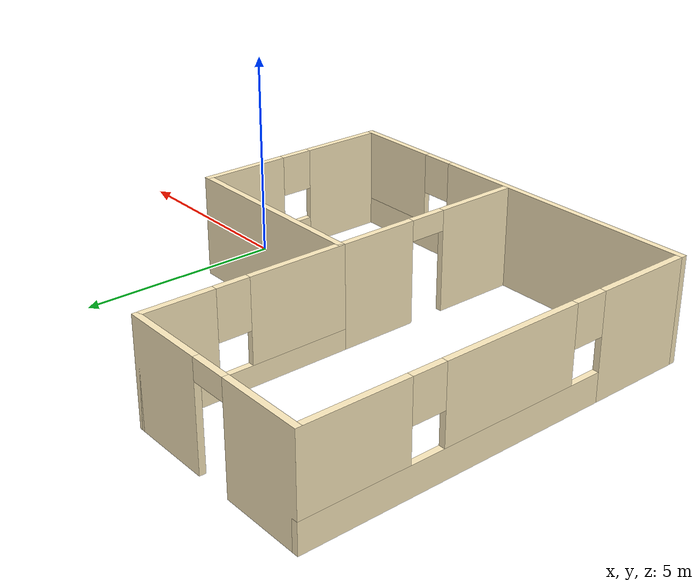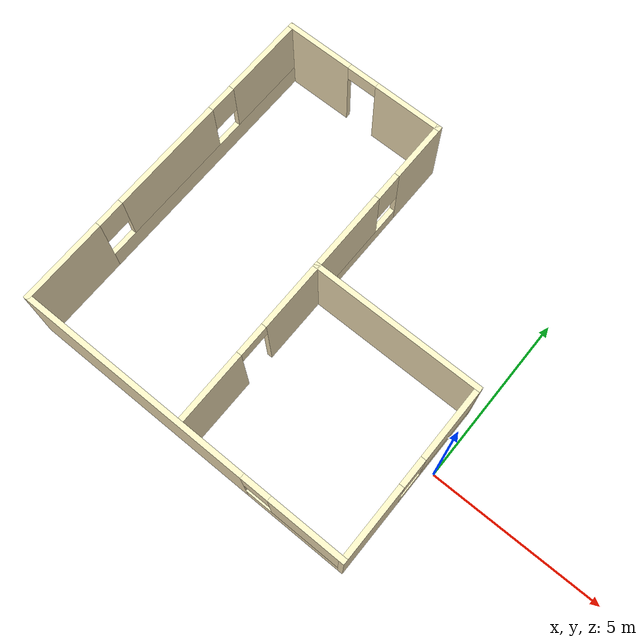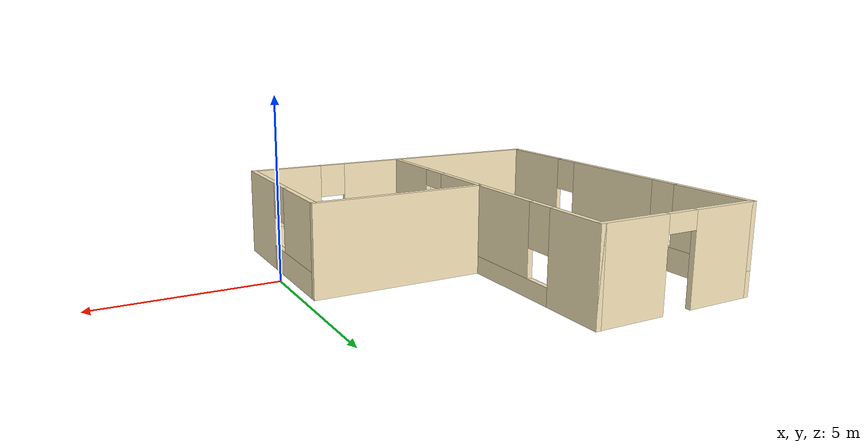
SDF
<?xml version='1.0'?>
<sdf version='1.6'>
  <model name='mybuilding'>
    <pose frame=''>-5.17902 1.68496 0 0 -0 0</pose>
    <link name='Wall_62'>
      <pose frame=''>-4.85 0 0 0 -0 1.5708</pose>
      <visual name='Wall_62_Visual_0'>
        <pose frame=''>-3.74581 0 1.25 0 -0 0</pose>
        <geometry>
          <box>
            <size>2.50837 0.15 2.5</size>
          </box>
        </geometry>
        <material>
          <script>
            <uri>file://media/materials/scripts/gazebo.material</uri>
            <name>Gazebo/Grey</name>
          </script>
          <ambient>1 0.929412 0.752941 1</ambient>
        </material>
        <meta>
          <layer>0</layer>
        </meta>
      </visual>
      <collision name='Wall_62_Collision_0'>
        <geometry>
          <box>
            <size>2.50837 0.15 2.5</size>
          </box>
        </geometry>
        <pose frame=''>-3.74581 0 1.25 0 -0 0</pose>
      </collision>
      <visual name='Wall_62_Visual_1'>
        <pose frame=''>1.25419 0 0.35 0 -0 0</pose>
        <geometry>
          <box>
            <size>7.49163 0.15 0.7</size>
          </box>
        </geometry>
        <material>
          <script>
            <uri>file://media/materials/scripts/gazebo.material</uri>
            <name>Gazebo/Grey</name>
          </script>
          <ambient>1 0.929412 0.752941 1</ambient>
        </material>
        <meta>
          <layer>0</layer>
        </meta>
      </visual>
      <collision name='Wall_62_Collision_1'>
        <geometry>
          <box>
            <size>7.49163 0.15 0.7</size>
          </box>
        </geometry>
        <pose frame=''>1.25419 0 0.35 0 -0 0</pose>
      </collision>
      <visual name='Wall_62_Visual_2'>
        <pose frame=''>-0.000724 0 1.6 0 -0 0</pose>
        <geometry>
          <box>
            <size>3.3818 0.15 1.8</size>
          </box>
        </geometry>
        <material>
          <script>
            <uri>file://media/materials/scripts/gazebo.material</uri>
            <name>Gazebo/Grey</name>
          </script>
          <ambient>1 0.929412 0.752941 1</ambient>
        </material>
        <meta>
          <layer>0</layer>
        </meta>
      </visual>
      <collision name='Wall_62_Collision_2'>
        <geometry>
          <box>
            <size>3.3818 0.15 1.8</size>
          </box>
        </geometry>
        <pose frame=''>-0.000724 0 1.6 0 -0 0</pose>
      </collision>
      <visual name='Wall_62_Visual_3'>
        <pose frame=''>3.74509 0 1.6 0 -0 0</pose>
        <geometry>
          <box>
            <size>2.50982 0.15 1.8</size>
          </box>
        </geometry>
        <material>
          <script>
            <uri>file://media/materials/scripts/gazebo.material</uri>
            <name>Gazebo/Grey</name>
          </script>
          <ambient>1 0.929412 0.752941 1</ambient>
        </material>
        <meta>
          <layer>0</layer>
        </meta>
      </visual>
      <collision name='Wall_62_Collision_3'>
        <geometry>
          <box>
            <size>2.50982 0.15 1.8</size>
          </box>
        </geometry>
        <pose frame=''>3.74509 0 1.6 0 -0 0</pose>
      </collision>
      <visual name='Wall_62_Visual_4'>
        <pose frame=''>-2.09163 0 2 0 -0 0</pose>
        <geometry>
          <box>
            <size>0.8 0.15 1</size>
          </box>
        </geometry>
        <material>
          <script>
            <uri>file://media/materials/scripts/gazebo.material</uri>
            <name>Gazebo/Grey</name>
          </script>
          <ambient>1 0.929412 0.752941 1</ambient>
        </material>
        <meta>
          <layer>0</layer>
        </meta>
      </visual>
      <collision name='Wall_62_Collision_4'>
        <geometry>
          <box>
            <size>0.8 0.15 1</size>
          </box>
        </geometry>
        <pose frame=''>-2.09163 0 2 0 -0 0</pose>
      </collision>
      <visual name='Wall_62_Visual_5'>
        <pose frame=''>2.09018 0 2 0 -0 0</pose>
        <geometry>
          <box>
            <size>0.8 0.15 1</size>
          </box>
        </geometry>
        <material>
          <script>
            <uri>file://media/materials/scripts/gazebo.material</uri>
            <name>Gazebo/Grey</name>
          </script>
          <ambient>1 0.929412 0.752941 1</ambient>
        </material>
        <meta>
          <layer>0</layer>
        </meta>
      </visual>
      <collision name='Wall_62_Collision_5'>
        <geometry>
          <box>
            <size>0.8 0.15 1</size>
          </box>
        </geometry>
        <pose frame=''>2.09018 0 2 0 -0 0</pose>
      </collision>
    </link>
    <link name='Wall_64'>
      <pose frame=''>-2.425 4.925 0 0 -0 0</pose>
      <visual name='Wall_64_Visual_0'>
        <pose frame=''>-1.47838 0 1.25 0 -0 0</pose>
        <geometry>
          <box>
            <size>2.04324 0.15 2.5</size>
          </box>
        </geometry>
        <material>
          <script>
            <uri>file://media/materials/scripts/gazebo.material</uri>
            <name>Gazebo/Grey</name>
          </script>
          <ambient>1 0.929412 0.752941 1</ambient>
        </material>
        <meta>
          <layer>0</layer>
        </meta>
      </visual>
      <collision name='Wall_64_Collision_0'>
        <geometry>
          <box>
            <size>2.04324 0.15 2.5</size>
          </box>
        </geometry>
        <pose frame=''>-1.47838 0 1.25 0 -0 0</pose>
      </collision>
      <visual name='Wall_64_Visual_1'>
        <pose frame=''>1.47162 0 1.25 0 -0 0</pose>
        <geometry>
          <box>
            <size>2.05676 0.15 2.5</size>
          </box>
        </geometry>
        <material>
          <script>
            <uri>file://media/materials/scripts/gazebo.material</uri>
            <name>Gazebo/Grey</name>
          </script>
          <ambient>1 0.929412 0.752941 1</ambient>
        </material>
        <meta>
          <layer>0</layer>
        </meta>
      </visual>
      <collision name='Wall_64_Collision_1'>
        <geometry>
          <box>
            <size>2.05676 0.15 2.5</size>
          </box>
        </geometry>
        <pose frame=''>1.47162 0 1.25 0 -0 0</pose>
      </collision>
      <visual name='Wall_64_Visual_2'>
        <pose frame=''>-0.006757 0 2.25 0 -0 0</pose>
        <geometry>
          <box>
            <size>0.9 0.15 0.5</size>
          </box>
        </geometry>
        <material>
          <script>
            <uri>file://media/materials/scripts/gazebo.material</uri>
            <name>Gazebo/Grey</name>
          </script>
          <ambient>1 0.929412 0.752941 1</ambient>
        </material>
        <meta>
          <layer>0</layer>
        </meta>
      </visual>
      <collision name='Wall_64_Collision_2'>
        <geometry>
          <box>
            <size>0.9 0.15 0.5</size>
          </box>
        </geometry>
        <pose frame=''>-0.006757 0 2.25 0 -0 0</pose>
      </collision>
    </link>
    <link name='Wall_66'>
      <pose frame=''>0 2.5 0 0 0 -1.5708</pose>
      <visual name='Wall_66_Visual_0'>
        <pose frame=''>-1.60752 0 1.25 0 -0 0</pose>
        <geometry>
          <box>
            <size>1.78496 0.15 2.5</size>
          </box>
        </geometry>
        <material>
          <script>
            <uri>file://media/materials/scripts/gazebo.material</uri>
            <name>Gazebo/Grey</name>
          </script>
          <ambient>1 0.929412 0.752941 1</ambient>
        </material>
        <meta>
          <layer>0</layer>
        </meta>
      </visual>
      <collision name='Wall_66_Collision_0'>
        <geometry>
          <box>
            <size>1.78496 0.15 2.5</size>
          </box>
        </geometry>
        <pose frame=''>-1.60752 0 1.25 0 -0 0</pose>
      </collision>
      <visual name='Wall_66_Visual_1'>
        <pose frame=''>0.892479 0 0.25 0 -0 0</pose>
        <geometry>
          <box>
            <size>3.21504 0.15 0.5</size>
          </box>
        </geometry>
        <material>
          <script>
            <uri>file://media/materials/scripts/gazebo.material</uri>
            <name>Gazebo/Grey</name>
          </script>
          <ambient>1 0.929412 0.752941 1</ambient>
        </material>
        <meta>
          <layer>0</layer>
        </meta>
      </visual>
      <collision name='Wall_66_Collision_1'>
        <geometry>
          <box>
            <size>3.21504 0.15 0.5</size>
          </box>
        </geometry>
        <pose frame=''>0.892479 0 0.25 0 -0 0</pose>
      </collision>
      <visual name='Wall_66_Visual_2'>
        <pose frame=''>1.29248 0 1.5 0 -0 0</pose>
        <geometry>
          <box>
            <size>2.41504 0.15 2</size>
          </box>
        </geometry>
        <material>
          <script>
            <uri>file://media/materials/scripts/gazebo.material</uri>
            <name>Gazebo/Grey</name>
          </script>
          <ambient>1 0.929412 0.752941 1</ambient>
        </material>
        <meta>
          <layer>0</layer>
        </meta>
      </visual>
      <collision name='Wall_66_Collision_2'>
        <geometry>
          <box>
            <size>2.41504 0.15 2</size>
          </box>
        </geometry>
        <pose frame=''>1.29248 0 1.5 0 -0 0</pose>
      </collision>
      <visual name='Wall_66_Visual_3'>
        <pose frame=''>-0.315041 0 1.9 0 -0 0</pose>
        <geometry>
          <box>
            <size>0.8 0.15 1.2</size>
          </box>
        </geometry>
        <material>
          <script>
            <uri>file://media/materials/scripts/gazebo.material</uri>
            <name>Gazebo/Grey</name>
          </script>
          <ambient>1 0.929412 0.752941 1</ambient>
        </material>
        <meta>
          <layer>0</layer>
        </meta>
      </visual>
      <collision name='Wall_66_Collision_3'>
        <geometry>
          <box>
            <size>0.8 0.15 1.2</size>
          </box>
        </geometry>
        <pose frame=''>-0.315041 0 1.9 0 -0 0</pose>
      </collision>
    </link>
    <link name='Wall_71'>
      <collision name='Wall_71_Collision'>
        <geometry>
          <box>
            <size>5 0.15 2.5</size>
          </box>
        </geometry>
        <pose frame=''>0 0 1.25 0 -0 0</pose>
      </collision>
      <visual name='Wall_71_Visual'>
        <pose frame=''>0 0 1.25 0 -0 0</pose>
        <geometry>
          <box>
            <size>5 0.15 2.5</size>
          </box>
        </geometry>
        <material>
          <script>
            <uri>file://media/materials/scripts/gazebo.material</uri>
            <name>Gazebo/Grey</name>
          </script>
          <ambient>1 0.929412 0.752941 1</ambient>
        </material>
        <meta>
          <layer>0</layer>
        </meta>
      </visual>
      <pose frame=''>2.425 0.075 0 0 -0 0</pose>
    </link>
    <link name='Wall_74'>
      <pose frame=''>4.85 -2.425 0 0 -0 1.5708</pose>
      <visual name='Wall_74_Visual_0'>
        <pose frame=''>-1.49177 0 1.25 0 -0 0</pose>
        <geometry>
          <box>
            <size>2.16647 0.15 2.5</size>
          </box>
        </geometry>
        <material>
          <script>
            <uri>file://media/materials/scripts/gazebo.material</uri>
            <name>Gazebo/Grey</name>
          </script>
          <ambient>1 0.929412 0.752941 1</ambient>
        </material>
        <meta>
          <layer>0</layer>
        </meta>
      </visual>
      <collision name='Wall_74_Collision_0'>
        <geometry>
          <box>
            <size>2.16647 0.15 2.5</size>
          </box>
        </geometry>
        <pose frame=''>-1.49177 0 1.25 0 -0 0</pose>
      </collision>
      <visual name='Wall_74_Visual_1'>
        <pose frame=''>1.08323 0 0.35 0 -0 0</pose>
        <geometry>
          <box>
            <size>2.98353 0.15 0.7</size>
          </box>
        </geometry>
        <material>
          <script>
            <uri>file://media/materials/scripts/gazebo.material</uri>
            <name>Gazebo/Grey</name>
          </script>
          <ambient>1 0.929412 0.752941 1</ambient>
        </material>
        <meta>
          <layer>0</layer>
        </meta>
      </visual>
      <collision name='Wall_74_Collision_1'>
        <geometry>
          <box>
            <size>2.98353 0.15 0.7</size>
          </box>
        </geometry>
        <pose frame=''>1.08323 0 0.35 0 -0 0</pose>
      </collision>
      <visual name='Wall_74_Visual_2'>
        <pose frame=''>1.48323 0 1.6 0 -0 0</pose>
        <geometry>
          <box>
            <size>2.18353 0.15 1.8</size>
          </box>
        </geometry>
        <material>
          <script>
            <uri>file://media/materials/scripts/gazebo.material</uri>
            <name>Gazebo/Grey</name>
          </script>
          <ambient>1 0.929412 0.752941 1</ambient>
        </material>
        <meta>
          <layer>0</layer>
        </meta>
      </visual>
      <collision name='Wall_74_Collision_2'>
        <geometry>
          <box>
            <size>2.18353 0.15 1.8</size>
          </box>
        </geometry>
        <pose frame=''>1.48323 0 1.6 0 -0 0</pose>
      </collision>
      <visual name='Wall_74_Visual_3'>
        <pose frame=''>-0.008534 0 2 0 -0 0</pose>
        <geometry>
          <box>
            <size>0.8 0.15 1</size>
          </box>
        </geometry>
        <material>
          <script>
            <uri>file://media/materials/scripts/gazebo.material</uri>
            <name>Gazebo/Grey</name>
          </script>
          <ambient>1 0.929412 0.752941 1</ambient>
        </material>
        <meta>
          <layer>0</layer>
        </meta>
      </visual>
      <collision name='Wall_74_Collision_3'>
        <geometry>
          <box>
            <size>0.8 0.15 1</size>
          </box>
        </geometry>
        <pose frame=''>-0.008534 0 2 0 -0 0</pose>
      </collision>
    </link>
    <link name='Wall_76'>
      <pose frame=''>0 -4.925 0 0 -0 0</pose>
      <visual name='Wall_76_Visual_0'>
        <pose frame=''>-1.49862 0 1.25 0 -0 0</pose>
        <geometry>
          <box>
            <size>6.85275 0.15 2.5</size>
          </box>
        </geometry>
        <material>
          <script>
            <uri>file://media/materials/scripts/gazebo.material</uri>
            <name>Gazebo/Grey</name>
          </script>
          <ambient>1 0.929412 0.752941 1</ambient>
        </material>
        <meta>
          <layer>0</layer>
        </meta>
      </visual>
      <collision name='Wall_76_Collision_0'>
        <geometry>
          <box>
            <size>6.85275 0.15 2.5</size>
          </box>
        </geometry>
        <pose frame=''>-1.49862 0 1.25 0 -0 0</pose>
      </collision>
      <visual name='Wall_76_Visual_1'>
        <pose frame=''>3.42638 0 0.35 0 -0 0</pose>
        <geometry>
          <box>
            <size>2.99725 0.15 0.7</size>
          </box>
        </geometry>
        <material>
          <script>
            <uri>file://media/materials/scripts/gazebo.material</uri>
            <name>Gazebo/Grey</name>
          </script>
          <ambient>1 0.929412 0.752941 1</ambient>
        </material>
        <meta>
          <layer>0</layer>
        </meta>
      </visual>
      <collision name='Wall_76_Collision_1'>
        <geometry>
          <box>
            <size>2.99725 0.15 0.7</size>
          </box>
        </geometry>
        <pose frame=''>3.42638 0 0.35 0 -0 0</pose>
      </collision>
      <visual name='Wall_76_Visual_2'>
        <pose frame=''>3.82638 0 1.6 0 -0 0</pose>
        <geometry>
          <box>
            <size>2.19725 0.15 1.8</size>
          </box>
        </geometry>
        <material>
          <script>
            <uri>file://media/materials/scripts/gazebo.material</uri>
            <name>Gazebo/Grey</name>
          </script>
          <ambient>1 0.929412 0.752941 1</ambient>
        </material>
        <meta>
          <layer>0</layer>
        </meta>
      </visual>
      <collision name='Wall_76_Collision_2'>
        <geometry>
          <box>
            <size>2.19725 0.15 1.8</size>
          </box>
        </geometry>
        <pose frame=''>3.82638 0 1.6 0 -0 0</pose>
      </collision>
      <visual name='Wall_76_Visual_3'>
        <pose frame=''>2.32775 0 2 0 -0 0</pose>
        <geometry>
          <box>
            <size>0.8 0.15 1</size>
          </box>
        </geometry>
        <material>
          <script>
            <uri>file://media/materials/scripts/gazebo.material</uri>
            <name>Gazebo/Grey</name>
          </script>
          <ambient>1 0.929412 0.752941 1</ambient>
        </material>
        <meta>
          <layer>0</layer>
        </meta>
      </visual>
      <collision name='Wall_76_Collision_3'>
        <geometry>
          <box>
            <size>0.8 0.15 1</size>
          </box>
        </geometry>
        <pose frame=''>2.32775 0 2 0 -0 0</pose>
      </collision>
    </link>
    <link name='Wall_78'>
      <pose frame=''>0 -2.35 0 0 0 -1.5708</pose>
      <visual name='Wall_78_Visual_0'>
        <pose frame=''>-1.47268 0 1.25 0 -0 0</pose>
        <geometry>
          <box>
            <size>2.05463 0.15 2.5</size>
          </box>
        </geometry>
        <material>
          <script>
            <uri>file://media/materials/scripts/gazebo.material</uri>
            <name>Gazebo/Grey</name>
          </script>
          <ambient>1 0.929412 0.752941 1</ambient>
        </material>
        <meta>
          <layer>0</layer>
        </meta>
      </visual>
      <collision name='Wall_78_Collision_0'>
        <geometry>
          <box>
            <size>2.05463 0.15 2.5</size>
          </box>
        </geometry>
        <pose frame=''>-1.47268 0 1.25 0 -0 0</pose>
      </collision>
      <visual name='Wall_78_Visual_1'>
        <pose frame=''>1.47732 0 1.25 0 -0 0</pose>
        <geometry>
          <box>
            <size>2.04537 0.15 2.5</size>
          </box>
        </geometry>
        <material>
          <script>
            <uri>file://media/materials/scripts/gazebo.material</uri>
            <name>Gazebo/Grey</name>
          </script>
          <ambient>1 0.929412 0.752941 1</ambient>
        </material>
        <meta>
          <layer>0</layer>
        </meta>
      </visual>
      <collision name='Wall_78_Collision_1'>
        <geometry>
          <box>
            <size>2.04537 0.15 2.5</size>
          </box>
        </geometry>
        <pose frame=''>1.47732 0 1.25 0 -0 0</pose>
      </collision>
      <visual name='Wall_78_Visual_2'>
        <pose frame=''>0.004632 0 2.25 0 -0 0</pose>
        <geometry>
          <box>
            <size>0.9 0.15 0.5</size>
          </box>
        </geometry>
        <material>
          <script>
            <uri>file://media/materials/scripts/gazebo.material</uri>
            <name>Gazebo/Grey</name>
          </script>
          <ambient>1 0.929412 0.752941 1</ambient>
        </material>
        <meta>
          <layer>0</layer>
        </meta>
      </visual>
      <collision name='Wall_78_Collision_2'>
        <geometry>
          <box>
            <size>0.9 0.15 0.5</size>
          </box>
        </geometry>
        <pose frame=''>0.004632 0 2.25 0 -0 0</pose>
      </collision>
    </link>
    <static>1</static>
  </model>
</sdf>
